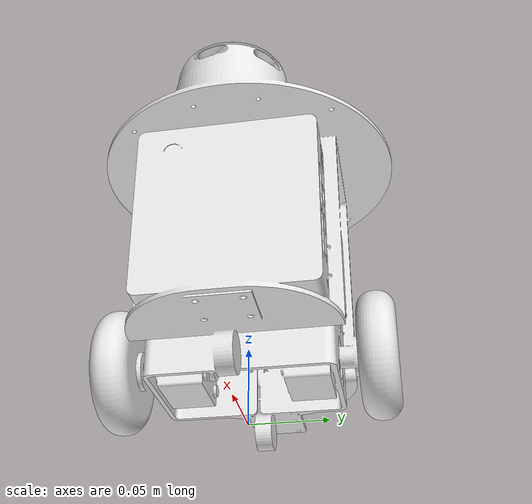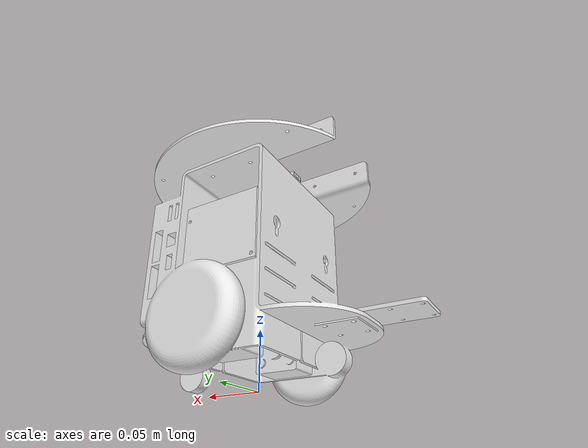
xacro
<?xml version="1.0"?>
<robot name="som_o_robot_25cm" xmlns:xacro="http://www.ros.org/wiki/xacro">

  <!-- Base_Link (Action body/chassis of the robot) -->
  <link name="base_link">
    <inertial>
        <mass value="${base_mass}" />
        <origin xyz="0 0 0" />
        <!--The 3x3 rotational inertia matrix. -->
        <cylinder_inertia m="${base_mass}" r="${base_radius}" h="${base_height}" />
    </inertial>

    <!-- Base_Link Visual (mesh from STL) -->
    <visual>
        <origin xyz="0 0 0" rpy="0 0 0" />
        <geometry>
            <mesh filename="package://som_o_description/meshes/obodroid1.stl"/>
        </geometry>
        <material name="White" />
    </visual>

    <!-- Base_Link Collision Model -->
    <collision>
        <origin xyz="0 0 ${base_col_box_height/2}" rpy="0 0 0 " />
        <geometry>
            <box size="${base_col_box_length} ${base_col_box_width} ${base_col_box_height}" />
        </geometry>
    </collision>
  </link>

  <gazebo reference="base_link">
      <material>Gazebo/White</material>
      <turnGravityOff>false</turnGravityOff>
  </gazebo>

</robot>
